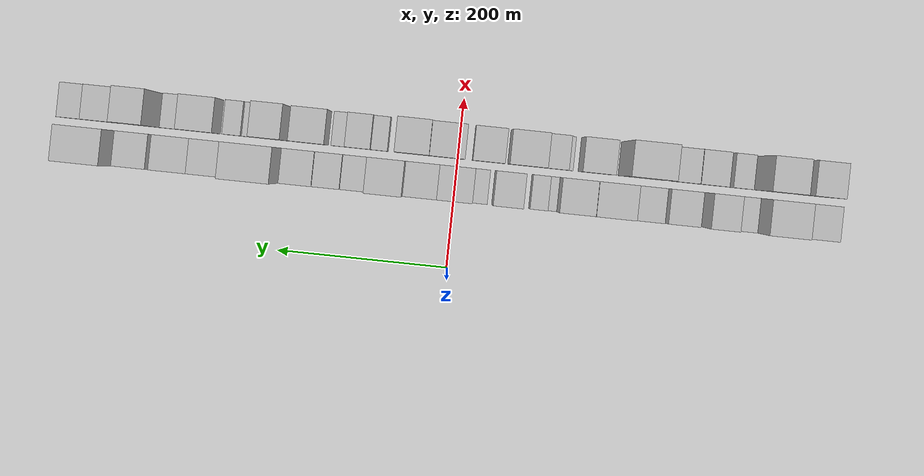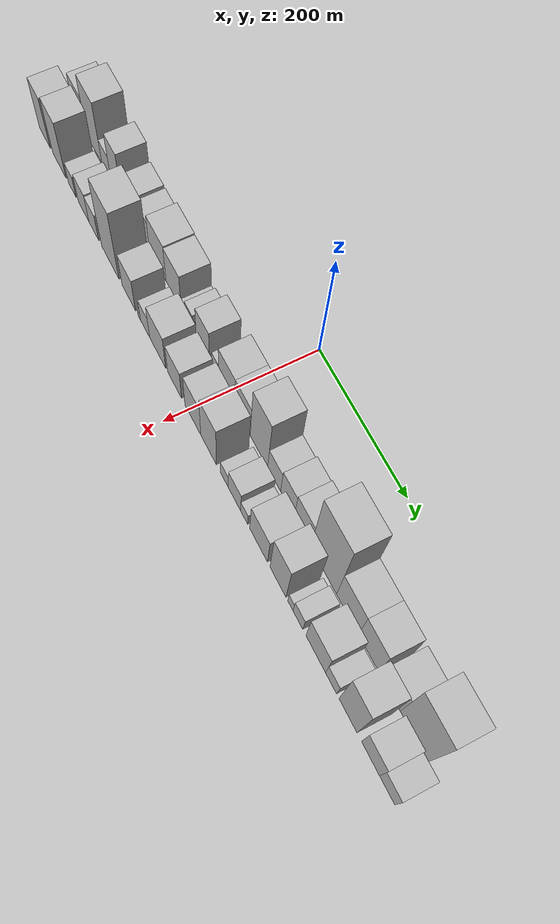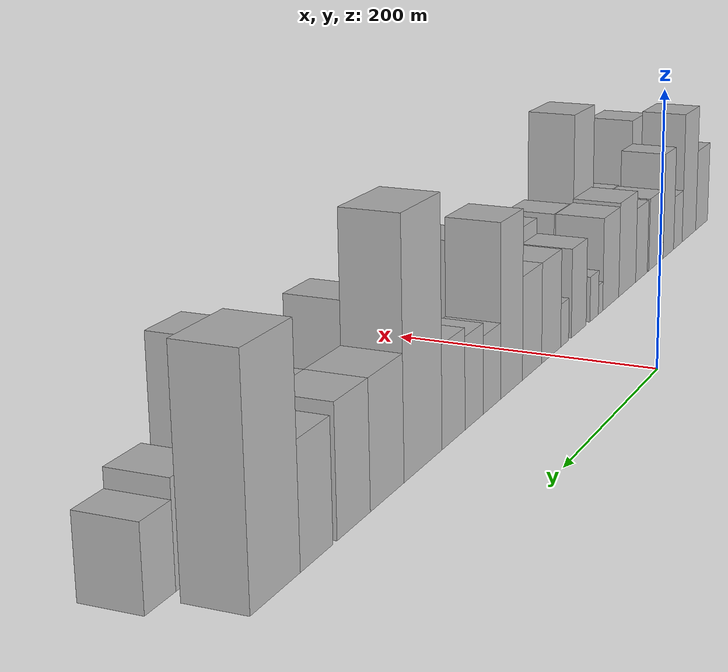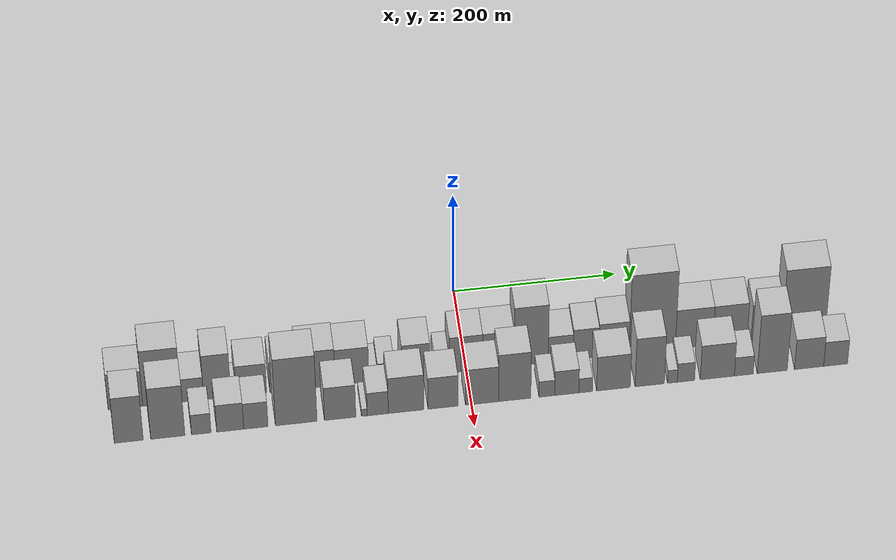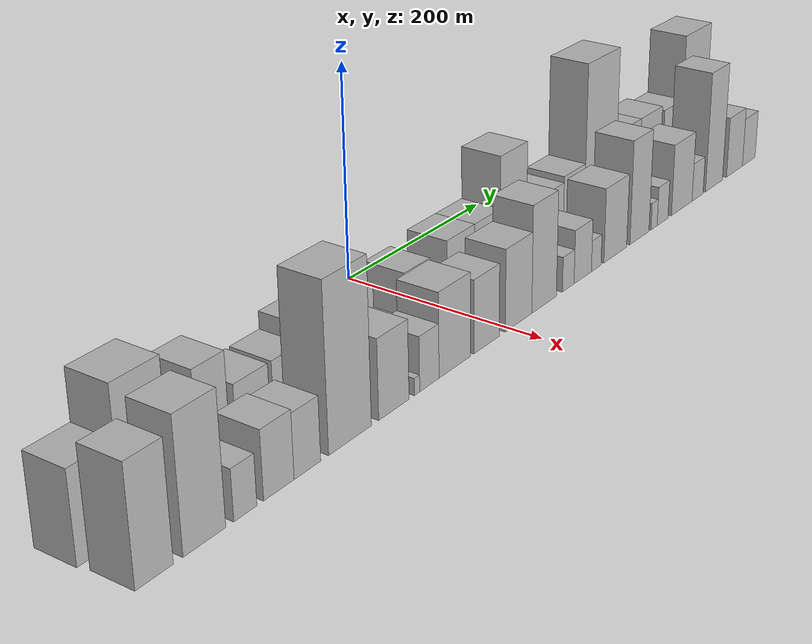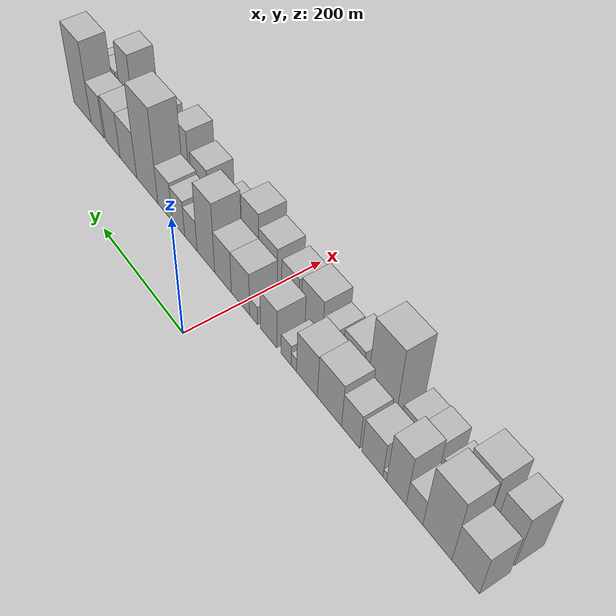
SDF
<sdf version="1.6">
 <world name="default">
  <scene>
   <sky><clouds><speed>12</speed></clouds></sky>
   <ambient>0.4 0.4 0.4 1</ambient>
   <background>0.7 0.7 0.7 1</background>
   <shadows>1</shadows>
  </scene>
  <gravity>0 0 -9.8066</gravity>
  <magnetic_field>6e-06 2.3e-05 -4.2e-05</magnetic_field>
  <physics default="0" name="default_physics" type="ode">
   <ode>
    <solver>
     <type>quick</type>
     <iters>10</iters>
     <sor>1.0</sor>
     <use_dynamic_moi_rescaling>0</use_dynamic_moi_rescaling>
    </solver>
    <constraints>
     <cfm>0</cfm>
     <erp>0.2</erp>
     <contact_max_correcting_vel>100</contact_max_correcting_vel>
     <contact_surface_layer>0.001</contact_surface_layer>
    </constraints>
   </ode>
   <max_step_size>0.004</max_step_size>
   <real_time_factor>1</real_time_factor>
   <real_time_update_rate>250</real_time_update_rate>
  </physics>
  <light name="sun" type="directional">
   <pose>0 0 10 0 0 0</pose>
   <diffuse>0.8 0.8 0.8 1</diffuse>
   <specular>0.2 0.2 0.2 1</specular>
   <attenuation>
    <range>1000</range>
    <constant>0.9</constant>
    <linear>0.01</linear>
    <quadratic>0.001</quadratic>
   </attenuation>
   <direction>-0.5 0.1 -0.9</direction>
  </light>
  <model name="building_1">
   <static>1</static>
   <pose>100.0000 -416.8968 0 0.000000 0.000000 0.000000</pose>
   <link name="link">
    <pose>0 0 37.50 0 0 0</pose>
    <collision name="collision"><geometry><box><size>40.0000 42.2064 75.0000</size></box></geometry></collision>
    <visual name="visual">
     <cast_shadows>0</cast_shadows>
     <geometry><box><size>40.0000 42.2064 75.0000</size></box></geometry>
     <material>
      <script>
       <uri>model://HANNAS_wall/materials/scripts</uri>
       <uri>model://HANNAS_wall/materials/textures</uri>
       <name>vrc/HANNAS_wall</name>
      </script>
     </material>
    </visual>
   </link>
  </model>
  <model name="building_2">
   <static>1</static>
   <pose>100.0000 -372.5448 0 0.000000 0.000000 0.000000</pose>
   <link name="link">
    <pose>0 0 58.50 0 0 0</pose>
    <collision name="collision"><geometry><box><size>40.0000 46.4976 117.0000</size></box></geometry></collision>
    <visual name="visual">
     <cast_shadows>0</cast_shadows>
     <geometry><box><size>40.0000 46.4976 117.0000</size></box></geometry>
     <material>
      <script>
       <uri>model://HANNAS_wall/materials/scripts</uri>
       <uri>model://HANNAS_wall/materials/textures</uri>
       <name>vrc/HANNAS_wall</name>
      </script>
     </material>
    </visual>
   </link>
  </model>
  <model name="building_3">
   <static>1</static>
   <pose>100.0000 -335.4504 0 0.000000 0.000000 0.000000</pose>
   <link name="link">
    <pose>0 0 24.00 0 0 0</pose>
    <collision name="collision"><geometry><box><size>40.0000 27.6911 48.0000</size></box></geometry></collision>
    <visual name="visual">
     <cast_shadows>0</cast_shadows>
     <geometry><box><size>40.0000 27.6911 48.0000</size></box></geometry>
     <material>
      <script>
       <uri>model://HANNAS_wall/materials/scripts</uri>
       <uri>model://HANNAS_wall/materials/textures</uri>
       <name>vrc/HANNAS_wall</name>
      </script>
     </material>
    </visual>
   </link>
  </model>
  <model name="building_4">
   <static>1</static>
   <pose>100.0000 -305.0278 0 0.000000 0.000000 0.000000</pose>
   <link name="link">
    <pose>0 0 46.50 0 0 0</pose>
    <collision name="collision"><geometry><box><size>40.0000 33.1542 93.0000</size></box></geometry></collision>
    <visual name="visual">
     <cast_shadows>0</cast_shadows>
     <geometry><box><size>40.0000 33.1542 93.0000</size></box></geometry>
     <material>
      <script>
       <uri>model://HANNAS_wall/materials/scripts</uri>
       <uri>model://HANNAS_wall/materials/textures</uri>
       <name>vrc/HANNAS_wall</name>
      </script>
     </material>
    </visual>
   </link>
  </model>
  <model name="building_5">
   <static>1</static>
   <pose>100.0000 -285.1943 0 0.000000 0.000000 0.000000</pose>
   <link name="link">
    <pose>0 0 7.50 0 0 0</pose>
    <collision name="collision"><geometry><box><size>40.0000 6.5128 15.0000</size></box></geometry></collision>
    <visual name="visual">
     <cast_shadows>0</cast_shadows>
     <geometry><box><size>40.0000 6.5128 15.0000</size></box></geometry>
     <material>
      <script>
       <uri>model://HANNAS_wall/materials/scripts</uri>
       <uri>model://HANNAS_wall/materials/textures</uri>
       <name>vrc/HANNAS_wall</name>
      </script>
     </material>
    </visual>
   </link>
  </model>
  <model name="building_6">
   <static>1</static>
   <pose>100.0000 -263.3251 0 0.000000 0.000000 0.000000</pose>
   <link name="link">
    <pose>0 0 31.50 0 0 0</pose>
    <collision name="collision"><geometry><box><size>40.0000 37.2256 63.0000</size></box></geometry></collision>
    <visual name="visual">
     <cast_shadows>0</cast_shadows>
     <geometry><box><size>40.0000 37.2256 63.0000</size></box></geometry>
     <material>
      <script>
       <uri>model://HANNAS_wall/materials/scripts</uri>
       <uri>model://HANNAS_wall/materials/textures</uri>
       <name>vrc/HANNAS_wall</name>
      </script>
     </material>
    </visual>
   </link>
  </model>
  <model name="building_7">
   <static>1</static>
   <pose>100.0000 -223.9966 0 0.000000 0.000000 0.000000</pose>
   <link name="link">
    <pose>0 0 31.50 0 0 0</pose>
    <collision name="collision"><geometry><box><size>40.0000 33.4315 63.0000</size></box></geometry></collision>
    <visual name="visual">
     <cast_shadows>0</cast_shadows>
     <geometry><box><size>40.0000 33.4315 63.0000</size></box></geometry>
     <material>
      <script>
       <uri>model://HANNAS_wall/materials/scripts</uri>
       <uri>model://HANNAS_wall/materials/textures</uri>
       <name>vrc/HANNAS_wall</name>
      </script>
     </material>
    </visual>
   </link>
  </model>
  <model name="building_8">
   <static>1</static>
   <pose>100.0000 -184.1923 0 0.000000 0.000000 0.000000</pose>
   <link name="link">
    <pose>0 0 39.00 0 0 0</pose>
    <collision name="collision"><geometry><box><size>40.0000 46.1773 78.0000</size></box></geometry></collision>
    <visual name="visual">
     <cast_shadows>0</cast_shadows>
     <geometry><box><size>40.0000 46.1773 78.0000</size></box></geometry>
     <material>
      <script>
       <uri>model://HANNAS_wall/materials/scripts</uri>
       <uri>model://HANNAS_wall/materials/textures</uri>
       <name>vrc/HANNAS_wall</name>
      </script>
     </material>
    </visual>
   </link>
  </model>
  <model name="building_9">
   <static>1</static>
   <pose>100.0000 -140.3430 0 0.000000 0.000000 0.000000</pose>
   <link name="link">
    <pose>0 0 37.50 0 0 0</pose>
    <collision name="collision"><geometry><box><size>40.0000 41.5213 75.0000</size></box></geometry></collision>
    <visual name="visual">
     <cast_shadows>0</cast_shadows>
     <geometry><box><size>40.0000 41.5213 75.0000</size></box></geometry>
     <material>
      <script>
       <uri>model://HANNAS_wall/materials/scripts</uri>
       <uri>model://HANNAS_wall/materials/textures</uri>
       <name>vrc/HANNAS_wall</name>
      </script>
     </material>
    </visual>
   </link>
  </model>
  <model name="building_10">
   <static>1</static>
   <pose>100.0000 -114.1921 0 0.000000 0.000000 0.000000</pose>
   <link name="link">
    <pose>0 0 12.00 0 0 0</pose>
    <collision name="collision"><geometry><box><size>40.0000 10.7806 24.0000</size></box></geometry></collision>
    <visual name="visual">
     <cast_shadows>0</cast_shadows>
     <geometry><box><size>40.0000 10.7806 24.0000</size></box></geometry>
     <material>
      <script>
       <uri>model://HANNAS_wall/materials/scripts</uri>
       <uri>model://HANNAS_wall/materials/textures</uri>
       <name>vrc/HANNAS_wall</name>
      </script>
     </material>
    </visual>
   </link>
  </model>
  <model name="building_11">
   <static>1</static>
   <pose>100.0000 -98.4244 0 0.000000 0.000000 0.000000</pose>
   <link name="link">
    <pose>0 0 18.00 0 0 0</pose>
    <collision name="collision"><geometry><box><size>40.0000 20.7548 36.0000</size></box></geometry></collision>
    <visual name="visual">
     <cast_shadows>0</cast_shadows>
     <geometry><box><size>40.0000 20.7548 36.0000</size></box></geometry>
     <material>
      <script>
       <uri>model://HANNAS_wall/materials/scripts</uri>
       <uri>model://HANNAS_wall/materials/textures</uri>
       <name>vrc/HANNAS_wall</name>
      </script>
     </material>
    </visual>
   </link>
  </model>
  <model name="building_12">
   <static>1</static>
   <pose>100.0000 -61.7388 0 0.000000 0.000000 0.000000</pose>
   <link name="link">
    <pose>0 0 34.50 0 0 0</pose>
    <collision name="collision"><geometry><box><size>40.0000 34.6165 69.0000</size></box></geometry></collision>
    <visual name="visual">
     <cast_shadows>0</cast_shadows>
     <geometry><box><size>40.0000 34.6165 69.0000</size></box></geometry>
     <material>
      <script>
       <uri>model://HANNAS_wall/materials/scripts</uri>
       <uri>model://HANNAS_wall/materials/textures</uri>
       <name>vrc/HANNAS_wall</name>
      </script>
     </material>
    </visual>
   </link>
  </model>
  <model name="building_13">
   <static>1</static>
   <pose>100.0000 -29.5615 0 0.000000 0.000000 0.000000</pose>
   <link name="link">
    <pose>0 0 16.50 0 0 0</pose>
    <collision name="collision"><geometry><box><size>40.0000 17.7382 33.0000</size></box></geometry></collision>
    <visual name="visual">
     <cast_shadows>0</cast_shadows>
     <geometry><box><size>40.0000 17.7382 33.0000</size></box></geometry>
     <material>
      <script>
       <uri>model://HANNAS_wall/materials/scripts</uri>
       <uri>model://HANNAS_wall/materials/textures</uri>
       <name>vrc/HANNAS_wall</name>
      </script>
     </material>
    </visual>
   </link>
  </model>
  <model name="building_14">
   <static>1</static>
   <pose>100.0000 -0.2801 0 0.000000 0.000000 0.000000</pose>
   <link name="link">
    <pose>0 0 37.50 0 0 0</pose>
    <collision name="collision"><geometry><box><size>40.0000 40.8246 75.0000</size></box></geometry></collision>
    <visual name="visual">
     <cast_shadows>0</cast_shadows>
     <geometry><box><size>40.0000 40.8246 75.0000</size></box></geometry>
     <material>
      <script>
       <uri>model://HANNAS_wall/materials/scripts</uri>
       <uri>model://HANNAS_wall/materials/textures</uri>
       <name>vrc/HANNAS_wall</name>
      </script>
     </material>
    </visual>
   </link>
  </model>
  <model name="building_15">
   <static>1</static>
   <pose>100.0000 39.4885 0 0.000000 0.000000 0.000000</pose>
   <link name="link">
    <pose>0 0 37.50 0 0 0</pose>
    <collision name="collision"><geometry><box><size>40.0000 38.7124 75.0000</size></box></geometry></collision>
    <visual name="visual">
     <cast_shadows>0</cast_shadows>
     <geometry><box><size>40.0000 38.7124 75.0000</size></box></geometry>
     <material>
      <script>
       <uri>model://HANNAS_wall/materials/scripts</uri>
       <uri>model://HANNAS_wall/materials/textures</uri>
       <name>vrc/HANNAS_wall</name>
      </script>
     </material>
    </visual>
   </link>
  </model>
  <model name="building_16">
   <static>1</static>
   <pose>100.0000 79.8082 0 0.000000 0.000000 0.000000</pose>
   <link name="link">
    <pose>0 0 61.50 0 0 0</pose>
    <collision name="collision"><geometry><box><size>40.0000 41.9272 123.0000</size></box></geometry></collision>
    <visual name="visual">
     <cast_shadows>0</cast_shadows>
     <geometry><box><size>40.0000 41.9272 123.0000</size></box></geometry>
     <material>
      <script>
       <uri>model://HANNAS_wall/materials/scripts</uri>
       <uri>model://HANNAS_wall/materials/textures</uri>
       <name>vrc/HANNAS_wall</name>
      </script>
     </material>
    </visual>
   </link>
  </model>
  <model name="building_17">
   <static>1</static>
   <pose>100.0000 116.1363 0 0.000000 0.000000 0.000000</pose>
   <link name="link">
    <pose>0 0 27.00 0 0 0</pose>
    <collision name="collision"><geometry><box><size>40.0000 30.7290 54.0000</size></box></geometry></collision>
    <visual name="visual">
     <cast_shadows>0</cast_shadows>
     <geometry><box><size>40.0000 30.7290 54.0000</size></box></geometry>
     <material>
      <script>
       <uri>model://HANNAS_wall/materials/scripts</uri>
       <uri>model://HANNAS_wall/materials/textures</uri>
       <name>vrc/HANNAS_wall</name>
      </script>
     </material>
    </visual>
   </link>
  </model>
  <model name="building_18">
   <static>1</static>
   <pose>100.0000 147.3082 0 0.000000 0.000000 0.000000</pose>
   <link name="link">
    <pose>0 0 31.50 0 0 0</pose>
    <collision name="collision"><geometry><box><size>40.0000 31.6147 63.0000</size></box></geometry></collision>
    <visual name="visual">
     <cast_shadows>0</cast_shadows>
     <geometry><box><size>40.0000 31.6147 63.0000</size></box></geometry>
     <material>
      <script>
       <uri>model://HANNAS_wall/materials/scripts</uri>
       <uri>model://HANNAS_wall/materials/textures</uri>
       <name>vrc/HANNAS_wall</name>
      </script>
     </material>
    </visual>
   </link>
  </model>
  <model name="building_19">
   <static>1</static>
   <pose>100.0000 181.7902 0 0.000000 0.000000 0.000000</pose>
   <link name="link">
    <pose>0 0 34.50 0 0 0</pose>
    <collision name="collision"><geometry><box><size>40.0000 37.3492 69.0000</size></box></geometry></collision>
    <visual name="visual">
     <cast_shadows>0</cast_shadows>
     <geometry><box><size>40.0000 37.3492 69.0000</size></box></geometry>
     <material>
      <script>
       <uri>model://HANNAS_wall/materials/scripts</uri>
       <uri>model://HANNAS_wall/materials/textures</uri>
       <name>vrc/HANNAS_wall</name>
      </script>
     </material>
    </visual>
   </link>
  </model>
  <model name="building_20">
   <static>1</static>
   <pose>100.0000 228.9965 0 0.000000 0.000000 0.000000</pose>
   <link name="link">
    <pose>0 0 82.50 0 0 0</pose>
    <collision name="collision"><geometry><box><size>40.0000 57.0633 165.0000</size></box></geometry></collision>
    <visual name="visual">
     <cast_shadows>0</cast_shadows>
     <geometry><box><size>40.0000 57.0633 165.0000</size></box></geometry>
     <material>
      <script>
       <uri>model://HANNAS_wall/materials/scripts</uri>
       <uri>model://HANNAS_wall/materials/textures</uri>
       <name>vrc/HANNAS_wall</name>
      </script>
     </material>
    </visual>
   </link>
  </model>
  <model name="building_21">
   <static>1</static>
   <pose>100.0000 280.7557 0 0.000000 0.000000 0.000000</pose>
   <link name="link">
    <pose>0 0 40.50 0 0 0</pose>
    <collision name="collision"><geometry><box><size>40.0000 46.4552 81.0000</size></box></geometry></collision>
    <visual name="visual">
     <cast_shadows>0</cast_shadows>
     <geometry><box><size>40.0000 46.4552 81.0000</size></box></geometry>
     <material>
      <script>
       <uri>model://HANNAS_wall/materials/scripts</uri>
       <uri>model://HANNAS_wall/materials/textures</uri>
       <name>vrc/HANNAS_wall</name>
      </script>
     </material>
    </visual>
   </link>
  </model>
  <model name="building_22">
   <static>1</static>
   <pose>100.0000 325.1335 0 0.000000 0.000000 0.000000</pose>
   <link name="link">
    <pose>0 0 40.50 0 0 0</pose>
    <collision name="collision"><geometry><box><size>40.0000 42.3004 81.0000</size></box></geometry></collision>
    <visual name="visual">
     <cast_shadows>0</cast_shadows>
     <geometry><box><size>40.0000 42.3004 81.0000</size></box></geometry>
     <material>
      <script>
       <uri>model://HANNAS_wall/materials/scripts</uri>
       <uri>model://HANNAS_wall/materials/textures</uri>
       <name>vrc/HANNAS_wall</name>
      </script>
     </material>
    </visual>
   </link>
  </model>
  <model name="building_23">
   <static>1</static>
   <pose>100.0000 370.3329 0 0.000000 0.000000 0.000000</pose>
   <link name="link">
    <pose>0 0 37.50 0 0 0</pose>
    <collision name="collision"><geometry><box><size>40.0000 38.0984 75.0000</size></box></geometry></collision>
    <visual name="visual">
     <cast_shadows>0</cast_shadows>
     <geometry><box><size>40.0000 38.0984 75.0000</size></box></geometry>
     <material>
      <script>
       <uri>model://HANNAS_wall/materials/scripts</uri>
       <uri>model://HANNAS_wall/materials/textures</uri>
       <name>vrc/HANNAS_wall</name>
      </script>
     </material>
    </visual>
   </link>
  </model>
  <model name="building_24">
   <static>1</static>
   <pose>100.0000 416.2995 0 0.000000 0.000000 0.000000</pose>
   <link name="link">
    <pose>0 0 70.50 0 0 0</pose>
    <collision name="collision"><geometry><box><size>40.0000 53.8346 141.0000</size></box></geometry></collision>
    <visual name="visual">
     <cast_shadows>0</cast_shadows>
     <geometry><box><size>40.0000 53.8346 141.0000</size></box></geometry>
     <material>
      <script>
       <uri>model://HANNAS_wall/materials/scripts</uri>
       <uri>model://HANNAS_wall/materials/textures</uri>
       <name>vrc/HANNAS_wall</name>
      </script>
     </material>
    </visual>
   </link>
  </model>
  <model name="building_25">
   <static>1</static>
   <pose>149.0000 -417.4397 0 0.000000 0.000000 0.000000</pose>
   <link name="link">
    <pose>0 0 48.00 0 0 0</pose>
    <collision name="collision"><geometry><box><size>40.0000 35.1206 96.0000</size></box></geometry></collision>
    <visual name="visual">
     <cast_shadows>0</cast_shadows>
     <geometry><box><size>40.0000 35.1206 96.0000</size></box></geometry>
     <material>
      <script>
       <uri>model://HANNAS_wall/materials/scripts</uri>
       <uri>model://HANNAS_wall/materials/textures</uri>
       <name>vrc/HANNAS_wall</name>
      </script>
     </material>
    </visual>
   </link>
  </model>
  <model name="building_26">
   <static>1</static>
   <pose>149.0000 -370.1096 0 0.000000 0.000000 0.000000</pose>
   <link name="link">
    <pose>0 0 54.00 0 0 0</pose>
    <collision name="collision"><geometry><box><size>40.0000 41.5396 108.0000</size></box></geometry></collision>
    <visual name="visual">
     <cast_shadows>0</cast_shadows>
     <geometry><box><size>40.0000 41.5396 108.0000</size></box></geometry>
     <material>
      <script>
       <uri>model://HANNAS_wall/materials/scripts</uri>
       <uri>model://HANNAS_wall/materials/textures</uri>
       <name>vrc/HANNAS_wall</name>
      </script>
     </material>
    </visual>
   </link>
  </model>
  <model name="building_27">
   <static>1</static>
   <pose>149.0000 -329.4799 0 0.000000 0.000000 0.000000</pose>
   <link name="link">
    <pose>0 0 21.00 0 0 0</pose>
    <collision name="collision"><geometry><box><size>40.0000 23.7198 42.0000</size></box></geometry></collision>
    <visual name="visual">
     <cast_shadows>0</cast_shadows>
     <geometry><box><size>40.0000 23.7198 42.0000</size></box></geometry>
     <material>
      <script>
       <uri>model://HANNAS_wall/materials/scripts</uri>
       <uri>model://HANNAS_wall/materials/textures</uri>
       <name>vrc/HANNAS_wall</name>
      </script>
     </material>
    </visual>
   </link>
  </model>
  <model name="building_28">
   <static>1</static>
   <pose>149.0000 -294.2608 0 0.000000 0.000000 0.000000</pose>
   <link name="link">
    <pose>0 0 28.50 0 0 0</pose>
    <collision name="collision"><geometry><box><size>40.0000 32.7182 57.0000</size></box></geometry></collision>
    <visual name="visual">
     <cast_shadows>0</cast_shadows>
     <geometry><box><size>40.0000 32.7182 57.0000</size></box></geometry>
     <material>
      <script>
       <uri>model://HANNAS_wall/materials/scripts</uri>
       <uri>model://HANNAS_wall/materials/textures</uri>
       <name>vrc/HANNAS_wall</name>
      </script>
     </material>
    </visual>
   </link>
  </model>
  <model name="building_29">
   <static>1</static>
   <pose>149.0000 -263.0924 0 0.000000 0.000000 0.000000</pose>
   <link name="link">
    <pose>0 0 27.00 0 0 0</pose>
    <collision name="collision"><geometry><box><size>40.0000 29.6186 54.0000</size></box></geometry></collision>
    <visual name="visual">
     <cast_shadows>0</cast_shadows>
     <geometry><box><size>40.0000 29.6186 54.0000</size></box></geometry>
     <material>
      <script>
       <uri>model://HANNAS_wall/materials/scripts</uri>
       <uri>model://HANNAS_wall/materials/textures</uri>
       <name>vrc/HANNAS_wall</name>
      </script>
     </material>
    </visual>
   </link>
  </model>
  <model name="building_30">
   <static>1</static>
   <pose>149.0000 -213.9517 0 0.000000 0.000000 0.000000</pose>
   <link name="link">
    <pose>0 0 70.50 0 0 0</pose>
    <collision name="collision"><geometry><box><size>40.0000 50.6628 141.0000</size></box></geometry></collision>
    <visual name="visual">
     <cast_shadows>0</cast_shadows>
     <geometry><box><size>40.0000 50.6628 141.0000</size></box></geometry>
     <material>
      <script>
       <uri>model://HANNAS_wall/materials/scripts</uri>
       <uri>model://HANNAS_wall/materials/textures</uri>
       <name>vrc/HANNAS_wall</name>
      </script>
     </material>
    </visual>
   </link>
  </model>
  <model name="building_31">
   <static>1</static>
   <pose>149.0000 -160.5037 0 0.000000 0.000000 0.000000</pose>
   <link name="link">
    <pose>0 0 34.50 0 0 0</pose>
    <collision name="collision"><geometry><box><size>40.0000 38.2331 69.0000</size></box></geometry></collision>
    <visual name="visual">
     <cast_shadows>0</cast_shadows>
     <geometry><box><size>40.0000 38.2331 69.0000</size></box></geometry>
     <material>
      <script>
       <uri>model://HANNAS_wall/materials/scripts</uri>
       <uri>model://HANNAS_wall/materials/textures</uri>
       <name>vrc/HANNAS_wall</name>
      </script>
     </material>
    </visual>
   </link>
  </model>
  <model name="building_32">
   <static>1</static>
   <pose>149.0000 -130.9024 0 0.000000 0.000000 0.000000</pose>
   <link name="link">
    <pose>0 0 7.50 0 0 0</pose>
    <collision name="collision"><geometry><box><size>40.0000 6.9696 15.0000</size></box></geometry></collision>
    <visual name="visual">
     <cast_shadows>0</cast_shadows>
     <geometry><box><size>40.0000 6.9696 15.0000</size></box></geometry>
     <material>
      <script>
       <uri>model://HANNAS_wall/materials/scripts</uri>
       <uri>model://HANNAS_wall/materials/textures</uri>
       <name>vrc/HANNAS_wall</name>
      </script>
     </material>
    </visual>
   </link>
  </model>
  <model name="building_33">
   <static>1</static>
   <pose>149.0000 -114.5510 0 0.000000 0.000000 0.000000</pose>
   <link name="link">
    <pose>0 0 24.00 0 0 0</pose>
    <collision name="collision"><geometry><box><size>40.0000 25.7333 48.0000</size></box></geometry></collision>
    <visual name="visual">
     <cast_shadows>0</cast_shadows>
     <geometry><box><size>40.0000 25.7333 48.0000</size></box></geometry>
     <material>
      <script>
       <uri>model://HANNAS_wall/materials/scripts</uri>
       <uri>model://HANNAS_wall/materials/textures</uri>
       <name>vrc/HANNAS_wall</name>
      </script>
     </material>
    </visual>
   </link>
  </model>
  <model name="building_34">
   <static>1</static>
   <pose>149.0000 -79.9628 0 0.000000 0.000000 0.000000</pose>
   <link name="link">
    <pose>0 0 37.50 0 0 0</pose>
    <collision name="collision"><geometry><box><size>40.0000 43.4430 75.0000</size></box></geometry></collision>
    <visual name="visual">
     <cast_shadows>0</cast_shadows>
     <geometry><box><size>40.0000 43.4430 75.0000</size></box></geometry>
     <material>
      <script>
       <uri>model://HANNAS_wall/materials/scripts</uri>
       <uri>model://HANNAS_wall/materials/textures</uri>
       <name>vrc/HANNAS_wall</name>
      </script>
     </material>
    </visual>
   </link>
  </model>
  <model name="building_35">
   <static>1</static>
   <pose>149.0000 -34.7926 0 0.000000 0.000000 0.000000</pose>
   <link name="link">
    <pose>0 0 33.00 0 0 0</pose>
    <collision name="collision"><geometry><box><size>40.0000 36.8974 66.0000</size></box></geometry></collision>
    <visual name="visual">
     <cast_shadows>0</cast_shadows>
     <geometry><box><size>40.0000 36.8974 66.0000</size></box></geometry>
     <material>
      <script>
       <uri>model://HANNAS_wall/materials/scripts</uri>
       <uri>model://HANNAS_wall/materials/textures</uri>
       <name>vrc/HANNAS_wall</name>
      </script>
     </material>
    </visual>
   </link>
  </model>
  <model name="building_36">
   <static>1</static>
   <pose>149.0000 12.9901 0 0.000000 0.000000 0.000000</pose>
   <link name="link">
    <pose>0 0 37.50 0 0 0</pose>
    <collision name="collision"><geometry><box><size>40.0000 40.6679 75.0000</size></box></geometry></collision>
    <visual name="visual">
     <cast_shadows>0</cast_shadows>
     <geometry><box><size>40.0000 40.6679 75.0000</size></box></geometry>
     <material>
      <script>
       <uri>model://HANNAS_wall/materials/scripts</uri>
       <uri>model://HANNAS_wall/materials/textures</uri>
       <name>vrc/HANNAS_wall</name>
      </script>
     </material>
    </visual>
   </link>
  </model>
  <model name="building_37">
   <static>1</static>
   <pose>149.0000 52.9728 0 0.000000 0.000000 0.000000</pose>
   <link name="link">
    <pose>0 0 49.50 0 0 0</pose>
    <collision name="collision"><geometry><box><size>40.0000 39.2976 99.0000</size></box></geometry></collision>
    <visual name="visual">
     <cast_shadows>0</cast_shadows>
     <geometry><box><size>40.0000 39.2976 99.0000</size></box></geometry>
     <material>
      <script>
       <uri>model://HANNAS_wall/materials/scripts</uri>
       <uri>model://HANNAS_wall/materials/textures</uri>
       <name>vrc/HANNAS_wall</name>
      </script>
     </material>
    </visual>
   </link>
  </model>
  <model name="building_38">
   <static>1</static>
   <pose>149.0000 92.2882 0 0.000000 0.000000 0.000000</pose>
   <link name="link">
    <pose>0 0 16.50 0 0 0</pose>
    <collision name="collision"><geometry><box><size>40.0000 19.3330 33.0000</size></box></geometry></collision>
    <visual name="visual">
     <cast_shadows>0</cast_shadows>
     <geometry><box><size>40.0000 19.3330 33.0000</size></box></geometry>
     <material>
      <script>
       <uri>model://HANNAS_wall/materials/scripts</uri>
       <uri>model://HANNAS_wall/materials/textures</uri>
       <name>vrc/HANNAS_wall</name>
      </script>
     </material>
    </visual>
   </link>
  </model>
  <model name="building_39">
   <static>1</static>
   <pose>149.0000 116.7470 0 0.000000 0.000000 0.000000</pose>
   <link name="link">
    <pose>0 0 25.50 0 0 0</pose>
    <collision name="collision"><geometry><box><size>40.0000 29.5846 51.0000</size></box></geometry></collision>
    <visual name="visual">
     <cast_shadows>0</cast_shadows>
     <geometry><box><size>40.0000 29.5846 51.0000</size></box></geometry>
     <material>
      <script>
       <uri>model://HANNAS_wall/materials/scripts</uri>
       <uri>model://HANNAS_wall/materials/textures</uri>
       <name>vrc/HANNAS_wall</name>
      </script>
     </material>
    </visual>
   </link>
  </model>
  <model name="building_40">
   <static>1</static>
   <pose>149.0000 139.9603 0 0.000000 0.000000 0.000000</pose>
   <link name="link">
    <pose>0 0 15.00 0 0 0</pose>
    <collision name="collision"><geometry><box><size>40.0000 16.8420 30.0000</size></box></geometry></collision>
    <visual name="visual">
     <cast_shadows>0</cast_shadows>
     <geometry><box><size>40.0000 16.8420 30.0000</size></box></geometry>
     <material>
      <script>
       <uri>model://HANNAS_wall/materials/scripts</uri>
       <uri>model://HANNAS_wall/materials/textures</uri>
       <name>vrc/HANNAS_wall</name>
      </script>
     </material>
    </visual>
   </link>
  </model>
  <model name="building_41">
   <static>1</static>
   <pose>149.0000 174.0063 0 0.000000 0.000000 0.000000</pose>
   <link name="link">
    <pose>0 0 36.00 0 0 0</pose>
    <collision name="collision"><geometry><box><size>40.0000 41.2501 72.0000</size></box></geometry></collision>
    <visual name="visual">
     <cast_shadows>0</cast_shadows>
     <geometry><box><size>40.0000 41.2501 72.0000</size></box></geometry>
     <material>
      <script>
       <uri>model://HANNAS_wall/materials/scripts</uri>
       <uri>model://HANNAS_wall/materials/textures</uri>
       <name>vrc/HANNAS_wall</name>
      </script>
     </material>
    </visual>
   </link>
  </model>
  <model name="building_42">
   <static>1</static>
   <pose>149.0000 218.6238 0 0.000000 0.000000 0.000000</pose>
   <link name="link">
    <pose>0 0 51.00 0 0 0</pose>
    <collision name="collision"><geometry><box><size>40.0000 35.9850 102.0000</size></box></geometry></collision>
    <visual name="visual">
     <cast_shadows>0</cast_shadows>
     <geometry><box><size>40.0000 35.9850 102.0000</size></box></geometry>
     <material>
      <script>
       <uri>model://HANNAS_wall/materials/scripts</uri>
       <uri>model://HANNAS_wall/materials/textures</uri>
       <name>vrc/HANNAS_wall</name>
      </script>
     </material>
    </visual>
   </link>
  </model>
  <model name="building_43">
   <static>1</static>
   <pose>149.0000 246.5766 0 0.000000 0.000000 0.000000</pose>
   <link name="link">
    <pose>0 0 13.50 0 0 0</pose>
    <collision name="collision"><geometry><box><size>40.0000 11.9206 27.0000</size></box></geometry></collision>
    <visual name="visual">
     <cast_shadows>0</cast_shadows>
     <geometry><box><size>40.0000 11.9206 27.0000</size></box></geometry>
     <material>
      <script>
       <uri>model://HANNAS_wall/materials/scripts</uri>
       <uri>model://HANNAS_wall/materials/textures</uri>
       <name>vrc/HANNAS_wall</name>
      </script>
     </material>
    </visual>
   </link>
  </model>
  <model name="building_44">
   <static>1</static>
   <pose>149.0000 263.1920 0 0.000000 0.000000 0.000000</pose>
   <link name="link">
    <pose>0 0 19.50 0 0 0</pose>
    <collision name="collision"><geometry><box><size>40.0000 21.3102 39.0000</size></box></geometry></collision>
    <visual name="visual">
     <cast_shadows>0</cast_shadows>
     <geometry><box><size>40.0000 21.3102 39.0000</size></box></geometry>
     <material>
      <script>
       <uri>model://HANNAS_wall/materials/scripts</uri>
       <uri>model://HANNAS_wall/materials/textures</uri>
       <name>vrc/HANNAS_wall</name>
      </script>
     </material>
    </visual>
   </link>
  </model>
  <model name="building_45">
   <static>1</static>
   <pose>149.0000 301.8680 0 0.000000 0.000000 0.000000</pose>
   <link name="link">
    <pose>0 0 36.00 0 0 0</pose>
    <collision name="collision"><geometry><box><size>40.0000 42.0419 72.0000</size></box></geometry></collision>
    <visual name="visual">
     <cast_shadows>0</cast_shadows>
     <geometry><box><size>40.0000 42.0419 72.0000</size></box></geometry>
     <material>
      <script>
       <uri>model://HANNAS_wall/materials/scripts</uri>
       <uri>model://HANNAS_wall/materials/textures</uri>
       <name>vrc/HANNAS_wall</name>
      </script>
     </material>
    </visual>
   </link>
  </model>
  <model name="building_46">
   <static>1</static>
   <pose>149.0000 334.5055 0 0.000000 0.000000 0.000000</pose>
   <link name="link">
    <pose>0 0 19.50 0 0 0</pose>
    <collision name="collision"><geometry><box><size>40.0000 23.2331 39.0000</size></box></geometry></collision>
    <visual name="visual">
     <cast_shadows>0</cast_shadows>
     <geometry><box><size>40.0000 23.2331 39.0000</size></box></geometry>
     <material>
      <script>
       <uri>model://HANNAS_wall/materials/scripts</uri>
       <uri>model://HANNAS_wall/materials/textures</uri>
       <name>vrc/HANNAS_wall</name>
      </script>
     </material>
    </visual>
   </link>
  </model>
  <model name="building_47">
   <static>1</static>
   <pose>149.0000 369.6124 0 0.000000 0.000000 0.000000</pose>
   <link name="link">
    <pose>0 0 61.50 0 0 0</pose>
    <collision name="collision"><geometry><box><size>40.0000 36.9807 123.0000</size></box></geometry></collision>
    <visual name="visual">
     <cast_shadows>0</cast_shadows>
     <geometry><box><size>40.0000 36.9807 123.0000</size></box></geometry>
     <material>
      <script>
       <uri>model://HANNAS_wall/materials/scripts</uri>
       <uri>model://HANNAS_wall/materials/textures</uri>
       <name>vrc/HANNAS_wall</name>
      </script>
     </material>
    </visual>
   </link>
  </model>
  <model name="building_48">
   <static>1</static>
   <pose>149.0000 415.0932 0 0.000000 0.000000 0.000000</pose>
   <link name="link">
    <pose>0 0 31.50 0 0 0</pose>
    <collision name="collision"><geometry><box><size>40.0000 35.9809 63.0000</size></box></geometry></collision>
    <visual name="visual">
     <cast_shadows>0</cast_shadows>
     <geometry><box><size>40.0000 35.9809 63.0000</size></box></geometry>
     <material>
      <script>
       <uri>model://HANNAS_wall/materials/scripts</uri>
       <uri>model://HANNAS_wall/materials/textures</uri>
       <name>vrc/HANNAS_wall</name>
      </script>
     </material>
    </visual>
   </link>
  </model>
  <model name="building_49">
   <static>1</static>
   <pose>149.0000 447.8530 0 0.000000 0.000000 0.000000</pose>
   <link name="link">
    <pose>0 0 25.50 0 0 0</pose>
    <collision name="collision"><geometry><box><size>40.0000 29.5385 51.0000</size></box></geometry></collision>
    <visual name="visual">
     <cast_shadows>0</cast_shadows>
     <geometry><box><size>40.0000 29.5385 51.0000</size></box></geometry>
     <material>
      <script>
       <uri>model://HANNAS_wall/materials/scripts</uri>
       <uri>model://HANNAS_wall/materials/textures</uri>
       <name>vrc/HANNAS_wall</name>
      </script>
     </material>
    </visual>
   </link>
  </model>
 </world>
</sdf>
